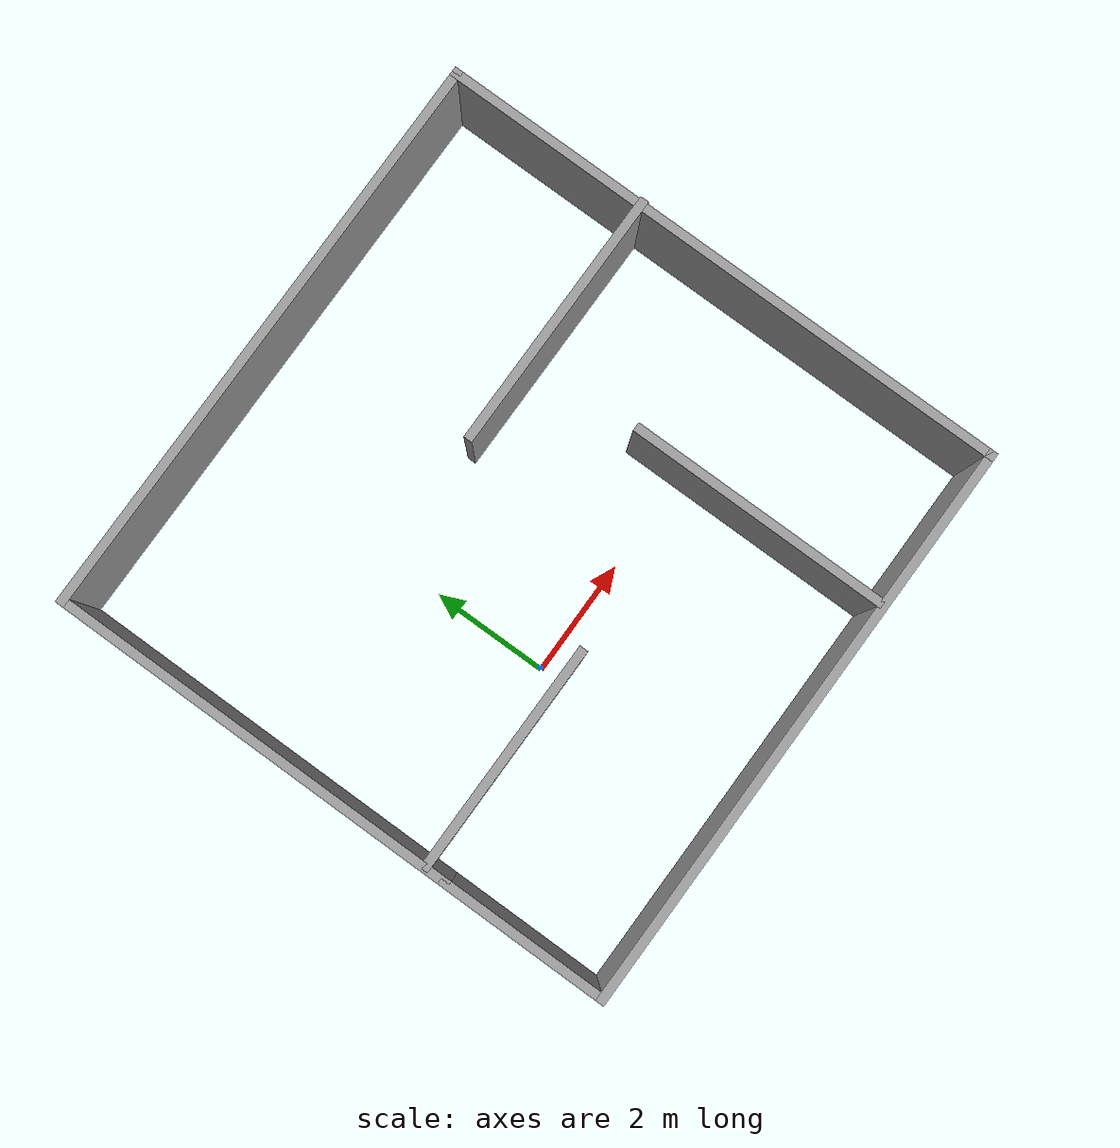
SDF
<?xml version='1.0'?>
<sdf version='1.7'>
  <model name='room'>
    <pose>1.52097 1.345 0 0 -0 0</pose>
    <link name='Wall_0'>
      <collision name='Wall_0_Collision'>
        <geometry>
          <box>
            <size>3 0.15 2.5</size>
          </box>
        </geometry>
        <pose>0 0 1.25 0 -0 0</pose>
      </collision>
      <visual name='Wall_0_Visual'>
        <pose>0 0 1.25 0 -0 0</pose>
        <geometry>
          <box>
            <size>3 0.15 2.5</size>
          </box>
        </geometry>
        <material>
          <script>
            <uri>file://media/materials/scripts/gazebo.material</uri>
            <name>Gazebo/Grey</name>
          </script>
          <ambient>1 1 1 1</ambient>
        </material>
        <meta>
          <layer>0</layer>
        </meta>
      </visual>
      <pose>-4.94097 -3.5 0 0 -0 -1.5708</pose>
    </link>
    <link name='Wall_1'>
      <collision name='Wall_1_Collision'>
        <geometry>
          <box>
            <size>10 0.15 2.5</size>
          </box>
        </geometry>
        <pose>0 0 1.25 0 -0 0</pose>
      </collision>
      <visual name='Wall_1_Visual'>
        <pose>0 0 1.25 0 -0 0</pose>
        <geometry>
          <box>
            <size>10 0.15 2.5</size>
          </box>
        </geometry>
        <material>
          <script>
            <uri>file://media/materials/scripts/gazebo.material</uri>
            <name>Gazebo/Grey</name>
          </script>
          <ambient>1 1 1 1</ambient>
        </material>
        <meta>
          <layer>0</layer>
        </meta>
      </visual>
      <pose>-0.015975 -4.925 0 0 -0 0</pose>
    </link>
    <link name='Wall_11'>
      <collision name='Wall_11_Collision'>
        <geometry>
          <box>
            <size>7.15 0.15 2.5</size>
          </box>
        </geometry>
        <pose>0 0 1.25 0 -0 0</pose>
      </collision>
      <visual name='Wall_11_Visual'>
        <pose>0 0 1.25 0 -0 0</pose>
        <geometry>
          <box>
            <size>7.15 0.15 2.5</size>
          </box>
        </geometry>
        <material>
          <script>
            <uri>file://media/materials/scripts/gazebo.material</uri>
            <name>Gazebo/Grey</name>
          </script>
          <ambient>1 1 1 1</ambient>
        </material>
        <meta>
          <layer>0</layer>
        </meta>
      </visual>
      <pose>-4.94097 1.425 0 0 -0 1.5708</pose>
    </link>
    <link name='Wall_13'>
      <collision name='Wall_13_Collision'>
        <geometry>
          <box>
            <size>4 0.15 2.5</size>
          </box>
        </geometry>
        <pose>0 0 1.25 0 -0 0</pose>
      </collision>
      <visual name='Wall_13_Visual'>
        <pose>0 0 1.25 0 -0 0</pose>
        <geometry>
          <box>
            <size>4 0.15 2.5</size>
          </box>
        </geometry>
        <material>
          <script>
            <uri>file://media/materials/scripts/gazebo.material</uri>
            <name>Gazebo/Grey</name>
          </script>
          <ambient>1 1 1 1</ambient>
        </material>
        <meta>
          <layer>0</layer>
        </meta>
      </visual>
      <pose>-2.9761 -1.71793 0 0 -0 0</pose>
    </link>
    <link name='Wall_15'>
      <collision name='Wall_15_Collision'>
        <geometry>
          <box>
            <size>4.5 0.15 2.5</size>
          </box>
        </geometry>
        <pose>0 0 1.25 0 -0 0</pose>
      </collision>
      <visual name='Wall_15_Visual'>
        <pose>0 0 1.25 0 -0 0</pose>
        <geometry>
          <box>
            <size>4.5 0.15 2.5</size>
          </box>
        </geometry>
        <material>
          <script>
            <uri>file://media/materials/scripts/gazebo.material</uri>
            <name>Gazebo/Grey</name>
          </script>
          <ambient>1 1 1 1</ambient>
        </material>
        <meta>
          <layer>0</layer>
        </meta>
      </visual>
      <pose>2.76598 1.5007 0 0 -0 3.14159</pose>
    </link>
    <link name='Wall_17'>
      <collision name='Wall_17_Collision'>
        <geometry>
          <box>
            <size>4.5 0.15 2.5</size>
          </box>
        </geometry>
        <pose>0 0 1.25 0 -0 0</pose>
      </collision>
      <visual name='Wall_17_Visual'>
        <pose>0 0 1.25 0 -0 0</pose>
        <geometry>
          <box>
            <size>4.5 0.15 2.5</size>
          </box>
        </geometry>
        <material>
          <script>
            <uri>file://media/materials/scripts/gazebo.material</uri>
            <name>Gazebo/Grey</name>
          </script>
          <ambient>1 1 1 1</ambient>
        </material>
        <meta>
          <layer>0</layer>
        </meta>
      </visual>
      <pose>2.14795 -2.65515 0 0 -0 1.5708</pose>
    </link>
    <link name='Wall_5'>
      <collision name='Wall_5_Collision'>
        <geometry>
          <box>
            <size>10 0.15 2.5</size>
          </box>
        </geometry>
        <pose>0 0 1.25 0 -0 0</pose>
      </collision>
      <visual name='Wall_5_Visual'>
        <pose>0 0 1.25 0 -0 0</pose>
        <geometry>
          <box>
            <size>10 0.15 2.5</size>
          </box>
        </geometry>
        <material>
          <script>
            <uri>file://media/materials/scripts/gazebo.material</uri>
            <name>Gazebo/Grey</name>
          </script>
          <ambient>1 1 1 1</ambient>
        </material>
        <meta>
          <layer>0</layer>
        </meta>
      </visual>
      <pose>4.90902 0 0 0 -0 1.5708</pose>
    </link>
    <link name='Wall_9'>
      <collision name='Wall_9_Collision'>
        <geometry>
          <box>
            <size>10 0.15 2.5</size>
          </box>
        </geometry>
        <pose>0 0 1.25 0 -0 0</pose>
      </collision>
      <visual name='Wall_9_Visual'>
        <pose>0 0 1.25 0 -0 0</pose>
        <geometry>
          <box>
            <size>10 0.15 2.5</size>
          </box>
        </geometry>
        <material>
          <script>
            <uri>file://media/materials/scripts/gazebo.material</uri>
            <name>Gazebo/Grey</name>
          </script>
          <ambient>1 1 1 1</ambient>
        </material>
        <meta>
          <layer>0</layer>
        </meta>
      </visual>
      <pose>-0.015975 4.925 0 0 -0 3.14159</pose>
    </link>
    <static>1</static>
  </model>
</sdf>
